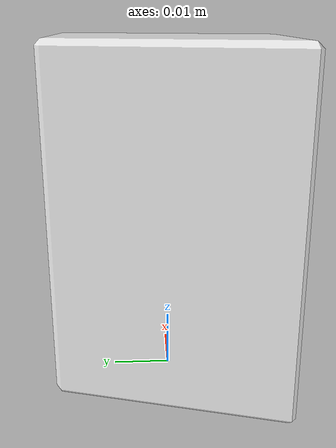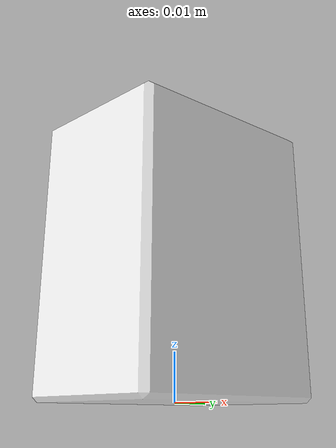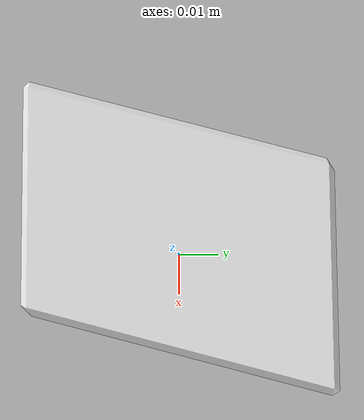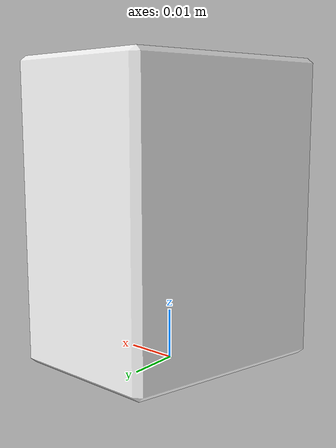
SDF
<?xml version="1.0"?>
<sdf version="1.4">
  <model name="parallelogram">
    <static>false</static>
    <link name="link">
      <pose>0 0 0 0 0 0</pose>
      <inertial>
        <pose>0 0 0.03 0 0 0</pose>
        <mass>0.5</mass>
        <inertia>
          <ixx>30958504.000000</ixx>
          <ixy>-2559881.250000</ixy>
          <ixz>-5.531458</ixz>
          <iyy>27480170.000000</iyy>
          <iyz>6.230402</iyz>
          <izz>15557725.000000</izz>
        </inertia>
      </inertial>

      <visual name="visual">
        <geometry>
          <mesh>
            <uri>model://parallelogram/meshes/Parallelogramm.stl</uri>
            <scale>0.001 0.001 0.001</scale>
          </mesh>
        </geometry>
        <material>
          <script>
            <uri>file://media/materials/scripts/gazebo.material</uri>
            <name>Gazebo/White</name>
          </script>
        </material>
      </visual>

      <collision name="collision">
        <geometry>
          <mesh>
            <uri>model://parallelogram/meshes/Parallelogramm.stl</uri>
            <scale>0.001 0.001 0.001</scale>
          </mesh>
        </geometry>
      </collision>
    </link>
  </model>
</sdf>
